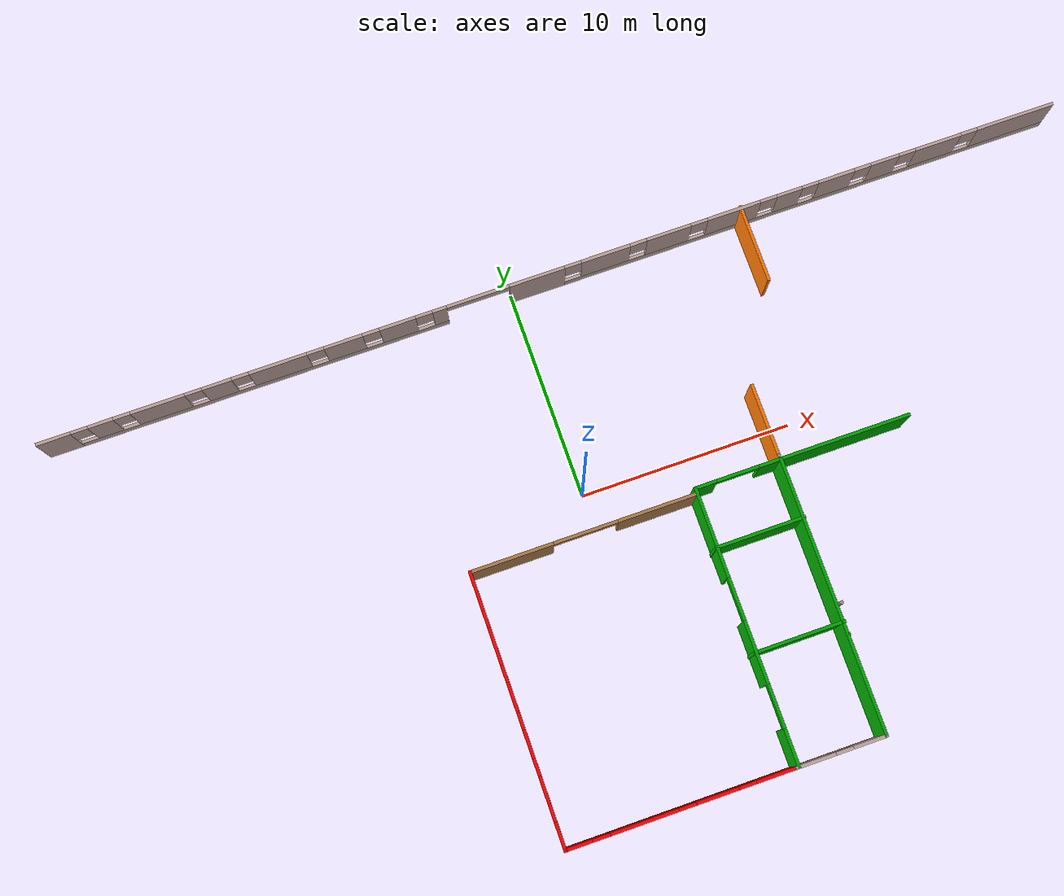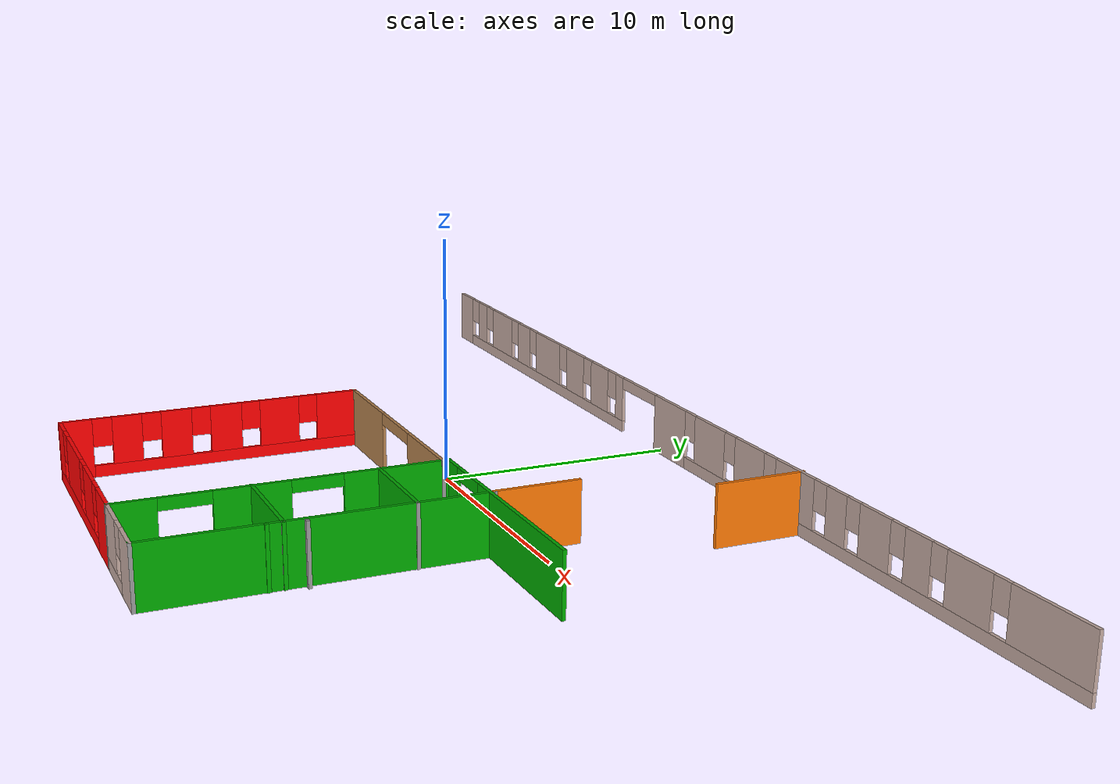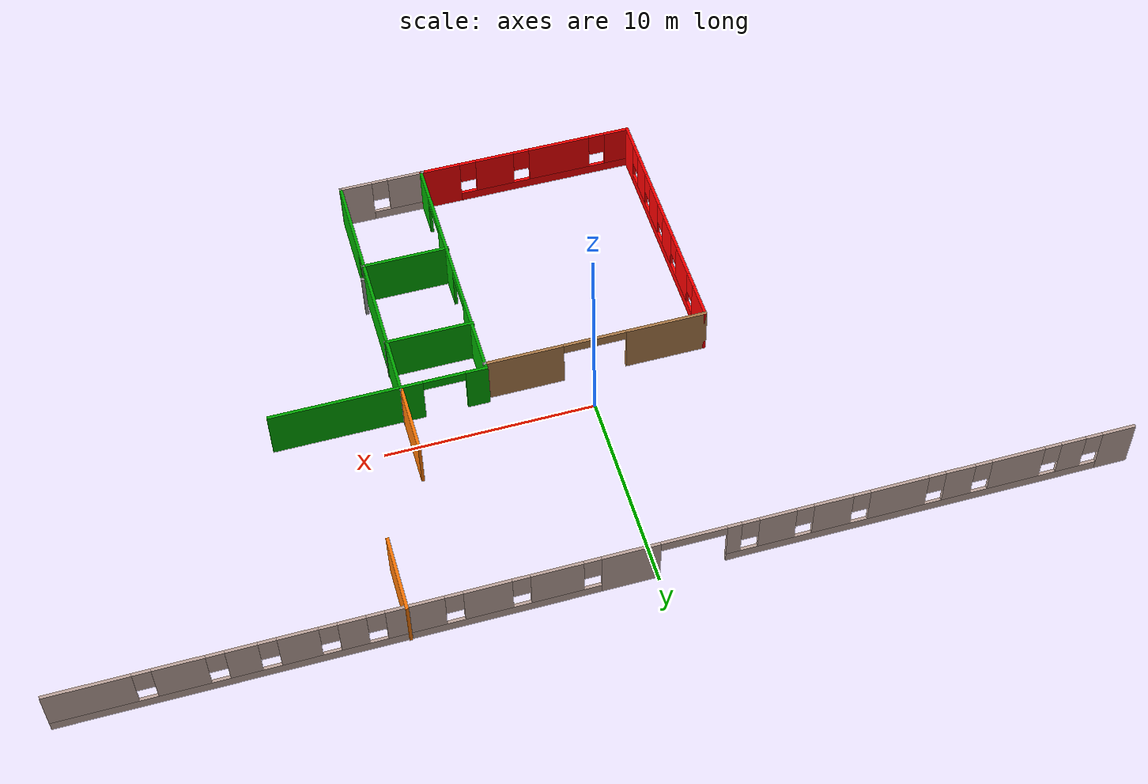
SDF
<sdf version="1.6">
 <model name="FloorPlan">
  <pose>-3.5402 -2.3631 0 0 -0 0</pose>
  <link name="Wall_0">
   <pose>5.59242 12.1499 0 0 -0 7e-06</pose>
   <visual name="Wall_0_Visual_0">
    <pose>-23.5744 0 1.25 0 -0 0</pose>
    <geometry><box><size>1.60129 0.15 2.5</size></box></geometry>
    <material>
     <script><uri>file://media/materials/scripts/gazebo.material</uri><name>Gazebo/Grey</name></script>
     <ambient>0.760784 0.662745 0.627451 1</ambient>
    </material>
    <meta><layer>0</layer></meta>
   </visual>
   <collision name="Wall_0_Collision_0">
    <geometry><box><size>1.60129 0.15 2.5</size></box></geometry>
    <pose>-23.5744 0 1.25 0 -0 0</pose>
   </collision>
   <visual name="Wall_0_Visual_1">
    <pose>-0.824166 0 1.25 0 -0 0</pose>
    <geometry><box><size>2.64767 0.15 2.5</size></box></geometry>
    <material>
     <script><uri>file://media/materials/scripts/gazebo.material</uri><name>Gazebo/Grey</name></script>
     <ambient>0.760784 0.662745 0.627451 1</ambient>
    </material>
    <meta><layer>0</layer></meta>
   </visual>
   <collision name="Wall_0_Collision_1">
    <geometry><box><size>2.64767 0.15 2.5</size></box></geometry>
    <pose>-0.824166 0 1.25 0 -0 0</pose>
   </collision>
   <visual name="Wall_0_Visual_2">
    <pose>-13.9609 0 0.25 0 -0 0</pose>
    <geometry><box><size>17.6257 0.15 0.5</size></box></geometry>
    <material>
     <script><uri>file://media/materials/scripts/gazebo.material</uri><name>Gazebo/Grey</name></script>
     <ambient>0.760784 0.662745 0.627451 1</ambient>
    </material>
    <meta><layer>0</layer></meta>
   </visual>
   <collision name="Wall_0_Collision_2">
    <geometry><box><size>17.6257 0.15 0.5</size></box></geometry>
    <pose>-13.9609 0 0.25 0 -0 0</pose>
   </collision>
   <visual name="Wall_0_Visual_3">
    <pose>12.4373 0 0.25 0 -0 0</pose>
    <geometry><box><size>23.8753 0.15 0.5</size></box></geometry>
    <material>
     <script><uri>file://media/materials/scripts/gazebo.material</uri><name>Gazebo/Grey</name></script>
     <ambient>0.760784 0.662745 0.627451 1</ambient>
    </material>
    <meta><layer>0</layer></meta>
   </visual>
   <collision name="Wall_0_Collision_3">
    <geometry><box><size>23.8753 0.15 0.5</size></box></geometry>
    <pose>12.4373 0 0.25 0 -0 0</pose>
   </collision>
   <visual name="Wall_0_Visual_4">
    <pose>-21.3839 0 1.5 0 -0 0</pose>
    <geometry><box><size>1.17957 0.15 2</size></box></geometry>
    <material>
     <script><uri>file://media/materials/scripts/gazebo.material</uri><name>Gazebo/Grey</name></script>
     <ambient>0.760784 0.662745 0.627451 1</ambient>
    </material>
    <meta><layer>0</layer></meta>
   </visual>
   <collision name="Wall_0_Collision_4">
    <geometry><box><size>1.17957 0.15 2</size></box></geometry>
    <pose>-21.3839 0 1.5 0 -0 0</pose>
   </collision>
   <visual name="Wall_0_Visual_5">
    <pose>-18.7356 0 1.5 0 -0 0</pose>
    <geometry><box><size>2.51713 0.15 2</size></box></geometry>
    <material>
     <script><uri>file://media/materials/scripts/gazebo.material</uri><name>Gazebo/Grey</name></script>
     <ambient>0.760784 0.662745 0.627451 1</ambient>
    </material>
    <meta><layer>0</layer></meta>
   </visual>
   <collision name="Wall_0_Collision_5">
    <geometry><box><size>2.51713 0.15 2</size></box></geometry>
    <pose>-18.7356 0 1.5 0 -0 0</pose>
   </collision>
   <visual name="Wall_0_Visual_6">
    <pose>-15.9802 0 1.5 0 -0 0</pose>
    <geometry><box><size>1.39358 0.15 2</size></box></geometry>
    <material>
     <script><uri>file://media/materials/scripts/gazebo.material</uri><name>Gazebo/Grey</name></script>
     <ambient>0.760784 0.662745 0.627451 1</ambient>
    </material>
    <meta><layer>0</layer></meta>
   </visual>
   <collision name="Wall_0_Collision_6">
    <geometry><box><size>1.39358 0.15 2</size></box></geometry>
    <pose>-15.9802 0 1.5 0 -0 0</pose>
   </collision>
   <visual name="Wall_0_Visual_7">
    <pose>-13.1179 0 1.5 0 -0 0</pose>
    <geometry><box><size>2.73113 0.15 2</size></box></geometry>
    <material>
     <script><uri>file://media/materials/scripts/gazebo.material</uri><name>Gazebo/Grey</name></script>
     <ambient>0.760784 0.662745 0.627451 1</ambient>
    </material>
    <meta><layer>0</layer></meta>
   </visual>
   <collision name="Wall_0_Collision_7">
    <geometry><box><size>2.73113 0.15 2</size></box></geometry>
    <pose>-13.1179 0 1.5 0 -0 0</pose>
   </collision>
   <visual name="Wall_0_Visual_8">
    <pose>-10.0415 0 1.5 0 -0 0</pose>
    <geometry><box><size>1.8216 0.15 2</size></box></geometry>
    <material>
     <script><uri>file://media/materials/scripts/gazebo.material</uri><name>Gazebo/Grey</name></script>
     <ambient>0.760784 0.662745 0.627451 1</ambient>
    </material>
    <meta><layer>0</layer></meta>
   </visual>
   <collision name="Wall_0_Collision_8">
    <geometry><box><size>1.8216 0.15 2</size></box></geometry>
    <pose>-10.0415 0 1.5 0 -0 0</pose>
   </collision>
   <visual name="Wall_0_Visual_9">
    <pose>-7.4734 0 1.5 0 -0 0</pose>
    <geometry><box><size>1.7146 0.15 2</size></box></geometry>
    <material>
     <script><uri>file://media/materials/scripts/gazebo.material</uri><name>Gazebo/Grey</name></script>
     <ambient>0.760784 0.662745 0.627451 1</ambient>
    </material>
    <meta><layer>0</layer></meta>
   </visual>
   <collision name="Wall_0_Collision_9">
    <geometry><box><size>1.7146 0.15 2</size></box></geometry>
    <pose>-7.4734 0 1.5 0 -0 0</pose>
   </collision>
   <visual name="Wall_0_Visual_10">
    <pose>-5.48205 0 1.5 0 -0 0</pose>
    <geometry><box><size>0.668097 0.15 2</size></box></geometry>
    <material>
     <script><uri>file://media/materials/scripts/gazebo.material</uri><name>Gazebo/Grey</name></script>
     <ambient>0.760784 0.662745 0.627451 1</ambient>
    </material>
    <meta><layer>0</layer></meta>
   </visual>
   <collision name="Wall_0_Collision_10">
    <geometry><box><size>0.668097 0.15 2</size></box></geometry>
    <pose>-5.48205 0 1.5 0 -0 0</pose>
   </collision>
   <visual name="Wall_0_Visual_11">
    <pose>-5.48205 0 1.5 0 -0 0</pose>
    <geometry><box><size>0.668097 0.15 2</size></box></geometry>
    <material>
     <script><uri>file://media/materials/scripts/gazebo.material</uri><name>Gazebo/Grey</name></script>
     <ambient>0.760784 0.662745 0.627451 1</ambient>
    </material>
    <meta><layer>0</layer></meta>
   </visual>
   <collision name="Wall_0_Collision_11">
    <geometry><box><size>0.668097 0.15 2</size></box></geometry>
    <pose>-5.48205 0 1.5 0 -0 0</pose>
   </collision>
   <visual name="Wall_0_Visual_12">
    <pose>2.47798 0 1.5 0 -0 0</pose>
    <geometry><box><size>2.35662 0.15 2</size></box></geometry>
    <material>
     <script><uri>file://media/materials/scripts/gazebo.material</uri><name>Gazebo/Grey</name></script>
     <ambient>0.760784 0.662745 0.627451 1</ambient>
    </material>
    <meta><layer>0</layer></meta>
   </visual>
   <collision name="Wall_0_Collision_12">
    <geometry><box><size>2.35662 0.15 2</size></box></geometry>
    <pose>2.47798 0 1.5 0 -0 0</pose>
   </collision>
   <visual name="Wall_0_Visual_13">
    <pose>5.5276 0 1.5 0 -0 0</pose>
    <geometry><box><size>2.14261 0.15 2</size></box></geometry>
    <material>
     <script><uri>file://media/materials/scripts/gazebo.material</uri><name>Gazebo/Grey</name></script>
     <ambient>0.760784 0.662745 0.627451 1</ambient>
    </material>
    <meta><layer>0</layer></meta>
   </visual>
   <collision name="Wall_0_Collision_13">
    <geometry><box><size>2.14261 0.15 2</size></box></geometry>
    <pose>5.5276 0 1.5 0 -0 0</pose>
   </collision>
   <visual name="Wall_0_Visual_14">
    <pose>8.68422 0 1.5 0 -0 0</pose>
    <geometry><box><size>2.57063 0.15 2</size></box></geometry>
    <material>
     <script><uri>file://media/materials/scripts/gazebo.material</uri><name>Gazebo/Grey</name></script>
     <ambient>0.760784 0.662745 0.627451 1</ambient>
    </material>
    <meta><layer>0</layer></meta>
   </visual>
   <collision name="Wall_0_Collision_14">
    <geometry><box><size>2.57063 0.15 2</size></box></geometry>
    <pose>8.68422 0 1.5 0 -0 0</pose>
   </collision>
   <visual name="Wall_0_Visual_15">
    <pose>11.3861 0 1.5 0 -0 0</pose>
    <geometry><box><size>1.23308 0.15 2</size></box></geometry>
    <material>
     <script><uri>file://media/materials/scripts/gazebo.material</uri><name>Gazebo/Grey</name></script>
     <ambient>0.760784 0.662745 0.627451 1</ambient>
    </material>
    <meta><layer>0</layer></meta>
   </visual>
   <collision name="Wall_0_Collision_15">
    <geometry><box><size>1.23308 0.15 2</size></box></geometry>
    <pose>11.3861 0 1.5 0 -0 0</pose>
   </collision>
   <visual name="Wall_0_Visual_16">
    <pose>13.6867 0 1.5 0 -0 0</pose>
    <geometry><box><size>1.7681 0.15 2</size></box></geometry>
    <material>
     <script><uri>file://media/materials/scripts/gazebo.material</uri><name>Gazebo/Grey</name></script>
     <ambient>0.760784 0.662745 0.627451 1</ambient>
    </material>
    <meta><layer>0</layer></meta>
   </visual>
   <collision name="Wall_0_Collision_16">
    <geometry><box><size>1.7681 0.15 2</size></box></geometry>
    <pose>13.6867 0 1.5 0 -0 0</pose>
   </collision>
   <visual name="Wall_0_Visual_17">
    <pose>16.0675 0 1.5 0 -0 0</pose>
    <geometry><box><size>1.39358 0.15 2</size></box></geometry>
    <material>
     <script><uri>file://media/materials/scripts/gazebo.material</uri><name>Gazebo/Grey</name></script>
     <ambient>0.760784 0.662745 0.627451 1</ambient>
    </material>
    <meta><layer>0</layer></meta>
   </visual>
   <collision name="Wall_0_Collision_17">
    <geometry><box><size>1.39358 0.15 2</size></box></geometry>
    <pose>16.0675 0 1.5 0 -0 0</pose>
   </collision>
   <visual name="Wall_0_Visual_18">
    <pose>18.6891 0 1.5 0 -0 0</pose>
    <geometry><box><size>2.24962 0.15 2</size></box></geometry>
    <material>
     <script><uri>file://media/materials/scripts/gazebo.material</uri><name>Gazebo/Grey</name></script>
     <ambient>0.760784 0.662745 0.627451 1</ambient>
    </material>
    <meta><layer>0</layer></meta>
   </visual>
   <collision name="Wall_0_Collision_18">
    <geometry><box><size>2.24962 0.15 2</size></box></geometry>
    <pose>18.6891 0 1.5 0 -0 0</pose>
   </collision>
   <visual name="Wall_0_Visual_19">
    <pose>22.4945 0 1.5 0 -0 0</pose>
    <geometry><box><size>3.7611 0.15 2</size></box></geometry>
    <material>
     <script><uri>file://media/materials/scripts/gazebo.material</uri><name>Gazebo/Grey</name></script>
     <ambient>0.760784 0.662745 0.627451 1</ambient>
    </material>
    <meta><layer>0</layer></meta>
   </visual>
   <collision name="Wall_0_Collision_19">
    <geometry><box><size>3.7611 0.15 2</size></box></geometry>
    <pose>22.4945 0 1.5 0 -0 0</pose>
   </collision>
   <visual name="Wall_0_Visual_20">
    <pose>-22.3737 0 1.9 0 -0 0</pose>
    <geometry><box><size>0.8 0.15 1.2</size></box></geometry>
    <material>
     <script><uri>file://media/materials/scripts/gazebo.material</uri><name>Gazebo/Grey</name></script>
     <ambient>0.760784 0.662745 0.627451 1</ambient>
    </material>
    <meta><layer>0</layer></meta>
   </visual>
   <collision name="Wall_0_Collision_20">
    <geometry><box><size>0.8 0.15 1.2</size></box></geometry>
    <pose>-22.3737 0 1.9 0 -0 0</pose>
   </collision>
   <visual name="Wall_0_Visual_21">
    <pose>0.89967 0 1.9 0 -0 0</pose>
    <geometry><box><size>0.8 0.15 1.2</size></box></geometry>
    <material>
     <script><uri>file://media/materials/scripts/gazebo.material</uri><name>Gazebo/Grey</name></script>
     <ambient>0.760784 0.662745 0.627451 1</ambient>
    </material>
    <meta><layer>0</layer></meta>
   </visual>
   <collision name="Wall_0_Collision_21">
    <geometry><box><size>0.8 0.15 1.2</size></box></geometry>
    <pose>0.89967 0 1.9 0 -0 0</pose>
   </collision>
   <visual name="Wall_0_Visual_22">
    <pose>-20.3941 0 1.9 0 -0 0</pose>
    <geometry><box><size>0.8 0.15 1.2</size></box></geometry>
    <material>
     <script><uri>file://media/materials/scripts/gazebo.material</uri><name>Gazebo/Grey</name></script>
     <ambient>0.760784 0.662745 0.627451 1</ambient>
    </material>
    <meta><layer>0</layer></meta>
   </visual>
   <collision name="Wall_0_Collision_22">
    <geometry><box><size>0.8 0.15 1.2</size></box></geometry>
    <pose>-20.3941 0 1.9 0 -0 0</pose>
   </collision>
   <visual name="Wall_0_Visual_23">
    <pose>-17.077 0 1.9 0 -0 0</pose>
    <geometry><box><size>0.8 0.15 1.2</size></box></geometry>
    <material>
     <script><uri>file://media/materials/scripts/gazebo.material</uri><name>Gazebo/Grey</name></script>
     <ambient>0.760784 0.662745 0.627451 1</ambient>
    </material>
    <meta><layer>0</layer></meta>
   </visual>
   <collision name="Wall_0_Collision_23">
    <geometry><box><size>0.8 0.15 1.2</size></box></geometry>
    <pose>-17.077 0 1.9 0 -0 0</pose>
   </collision>
   <visual name="Wall_0_Visual_24">
    <pose>-14.8834 0 1.9 0 -0 0</pose>
    <geometry><box><size>0.8 0.15 1.2</size></box></geometry>
    <material>
     <script><uri>file://media/materials/scripts/gazebo.material</uri><name>Gazebo/Grey</name></script>
     <ambient>0.760784 0.662745 0.627451 1</ambient>
    </material>
    <meta><layer>0</layer></meta>
   </visual>
   <collision name="Wall_0_Collision_24">
    <geometry><box><size>0.8 0.15 1.2</size></box></geometry>
    <pose>-14.8834 0 1.9 0 -0 0</pose>
   </collision>
   <visual name="Wall_0_Visual_25">
    <pose>-11.3523 0 1.9 0 -0 0</pose>
    <geometry><box><size>0.8 0.15 1.2</size></box></geometry>
    <material>
     <script><uri>file://media/materials/scripts/gazebo.material</uri><name>Gazebo/Grey</name></script>
     <ambient>0.760784 0.662745 0.627451 1</ambient>
    </material>
    <meta><layer>0</layer></meta>
   </visual>
   <collision name="Wall_0_Collision_25">
    <geometry><box><size>0.8 0.15 1.2</size></box></geometry>
    <pose>-11.3523 0 1.9 0 -0 0</pose>
   </collision>
   <visual name="Wall_0_Visual_26">
    <pose>-8.7307 0 1.9 0 -0 0</pose>
    <geometry><box><size>0.8 0.15 1.2</size></box></geometry>
    <material>
     <script><uri>file://media/materials/scripts/gazebo.material</uri><name>Gazebo/Grey</name></script>
     <ambient>0.760784 0.662745 0.627451 1</ambient>
    </material>
    <meta><layer>0</layer></meta>
   </visual>
   <collision name="Wall_0_Collision_26">
    <geometry><box><size>0.8 0.15 1.2</size></box></geometry>
    <pose>-8.7307 0 1.9 0 -0 0</pose>
   </collision>
   <visual name="Wall_0_Visual_27">
    <pose>-6.2161 0 1.9 0 -0 0</pose>
    <geometry><box><size>0.8 0.15 1.2</size></box></geometry>
    <material>
     <script><uri>file://media/materials/scripts/gazebo.material</uri><name>Gazebo/Grey</name></script>
     <ambient>0.760784 0.662745 0.627451 1</ambient>
    </material>
    <meta><layer>0</layer></meta>
   </visual>
   <collision name="Wall_0_Collision_27">
    <geometry><box><size>0.8 0.15 1.2</size></box></geometry>
    <pose>-6.2161 0 1.9 0 -0 0</pose>
   </collision>
   <visual name="Wall_0_Visual_28">
    <pose>4.05629 0 1.9 0 -0 0</pose>
    <geometry><box><size>0.8 0.15 1.2</size></box></geometry>
    <material>
     <script><uri>file://media/materials/scripts/gazebo.material</uri><name>Gazebo/Grey</name></script>
     <ambient>0.760784 0.662745 0.627451 1</ambient>
    </material>
    <meta><layer>0</layer></meta>
   </visual>
   <collision name="Wall_0_Collision_28">
    <geometry><box><size>0.8 0.15 1.2</size></box></geometry>
    <pose>4.05629 0 1.9 0 -0 0</pose>
   </collision>
   <visual name="Wall_0_Visual_29">
    <pose>6.9989 0 1.9 0 -0 0</pose>
    <geometry><box><size>0.8 0.15 1.2</size></box></geometry>
    <material>
     <script><uri>file://media/materials/scripts/gazebo.material</uri><name>Gazebo/Grey</name></script>
     <ambient>0.760784 0.662745 0.627451 1</ambient>
    </material>
    <meta><layer>0</layer></meta>
   </visual>
   <collision name="Wall_0_Collision_29">
    <geometry><box><size>0.8 0.15 1.2</size></box></geometry>
    <pose>6.9989 0 1.9 0 -0 0</pose>
   </collision>
   <visual name="Wall_0_Visual_30">
    <pose>10.3695 0 1.9 0 -0 0</pose>
    <geometry><box><size>0.8 0.15 1.2</size></box></geometry>
    <material>
     <script><uri>file://media/materials/scripts/gazebo.material</uri><name>Gazebo/Grey</name></script>
     <ambient>0.760784 0.662745 0.627451 1</ambient>
    </material>
    <meta><layer>0</layer></meta>
   </visual>
   <collision name="Wall_0_Collision_30">
    <geometry><box><size>0.8 0.15 1.2</size></box></geometry>
    <pose>10.3695 0 1.9 0 -0 0</pose>
   </collision>
   <visual name="Wall_0_Visual_31">
    <pose>12.4026 0 1.9 0 -0 0</pose>
    <geometry><box><size>0.8 0.15 1.2</size></box></geometry>
    <material>
     <script><uri>file://media/materials/scripts/gazebo.material</uri><name>Gazebo/Grey</name></script>
     <ambient>0.760784 0.662745 0.627451 1</ambient>
    </material>
    <meta><layer>0</layer></meta>
   </visual>
   <collision name="Wall_0_Collision_31">
    <geometry><box><size>0.8 0.15 1.2</size></box></geometry>
    <pose>12.4026 0 1.9 0 -0 0</pose>
   </collision>
   <visual name="Wall_0_Visual_32">
    <pose>14.9707 0 1.9 0 -0 0</pose>
    <geometry><box><size>0.8 0.15 1.2</size></box></geometry>
    <material>
     <script><uri>file://media/materials/scripts/gazebo.material</uri><name>Gazebo/Grey</name></script>
     <ambient>0.760784 0.662745 0.627451 1</ambient>
    </material>
    <meta><layer>0</layer></meta>
   </visual>
   <collision name="Wall_0_Collision_32">
    <geometry><box><size>0.8 0.15 1.2</size></box></geometry>
    <pose>14.9707 0 1.9 0 -0 0</pose>
   </collision>
   <visual name="Wall_0_Visual_33">
    <pose>17.1643 0 1.9 0 -0 0</pose>
    <geometry><box><size>0.8 0.15 1.2</size></box></geometry>
    <material>
     <script><uri>file://media/materials/scripts/gazebo.material</uri><name>Gazebo/Grey</name></script>
     <ambient>0.760784 0.662745 0.627451 1</ambient>
    </material>
    <meta><layer>0</layer></meta>
   </visual>
   <collision name="Wall_0_Collision_33">
    <geometry><box><size>0.8 0.15 1.2</size></box></geometry>
    <pose>17.1643 0 1.9 0 -0 0</pose>
   </collision>
   <visual name="Wall_0_Visual_34">
    <pose>20.2139 0 1.9 0 -0 0</pose>
    <geometry><box><size>0.8 0.15 1.2</size></box></geometry>
    <material>
     <script><uri>file://media/materials/scripts/gazebo.material</uri><name>Gazebo/Grey</name></script>
     <ambient>0.760784 0.662745 0.627451 1</ambient>
    </material>
    <meta><layer>0</layer></meta>
   </visual>
   <collision name="Wall_0_Collision_34">
    <geometry><box><size>0.8 0.15 1.2</size></box></geometry>
    <pose>20.2139 0 1.9 0 -0 0</pose>
   </collision>
   <visual name="Wall_0_Visual_35">
    <pose>-3.648 0 2.25 0 -0 0</pose>
    <geometry><box><size>3 0.15 0.5</size></box></geometry>
    <material>
     <script><uri>file://media/materials/scripts/gazebo.material</uri><name>Gazebo/Grey</name></script>
     <ambient>0.760784 0.662745 0.627451 1</ambient>
    </material>
    <meta><layer>0</layer></meta>
   </visual>
   <collision name="Wall_0_Collision_35">
    <geometry><box><size>3 0.15 0.5</size></box></geometry>
    <pose>-3.648 0 2.25 0 -0 0</pose>
   </collision>
   <visual name="Wall_0_Visual_36">
    <pose>-3.648 0 2.25 0 -0 0</pose>
    <geometry><box><size>3 0.15 0.5</size></box></geometry>
    <material>
     <script><uri>file://media/materials/scripts/gazebo.material</uri><name>Gazebo/Grey</name></script>
     <ambient>0.760784 0.662745 0.627451 1</ambient>
    </material>
    <meta><layer>0</layer></meta>
   </visual>
   <collision name="Wall_0_Collision_36">
    <geometry><box><size>3 0.15 0.5</size></box></geometry>
    <pose>-3.648 0 2.25 0 -0 0</pose>
   </collision>
  </link>
  <link name="Wall_101">
   <collision name="Wall_101_Collision">
    <geometry><box><size>13 0.15 2.5</size></box></geometry>
    <pose>0 0 1.25 0 -0 0</pose>
   </collision>
   <visual name="Wall_101_Visual">
    <pose>0 0 1.25 0 -0 0</pose>
    <geometry><box><size>13 0.15 2.5</size></box></geometry>
    <material>
     <script><uri>file://media/materials/scripts/gazebo.material</uri><name>Gazebo/Grey</name></script>
     <ambient>0 0.666667 0 1</ambient>
    </material>
    <meta><layer>0</layer></meta>
   </visual>
   <pose>12.2171 -5.77826 0 0 -0 -1.5708</pose>
  </link>
  <link name="Wall_102">
   <collision name="Wall_102_Collision">
    <geometry><box><size>0.15 0.15 2.5</size></box></geometry>
    <pose>0 0 1.25 0 -0 0</pose>
   </collision>
   <visual name="Wall_102_Visual">
    <pose>0 0 1.25 0 -0 0</pose>
    <geometry><box><size>0.15 0.15 2.5</size></box></geometry>
    <material>
     <script><uri>file://media/materials/scripts/gazebo.material</uri><name>Gazebo/Grey</name></script>
     <ambient>1 1 1 1</ambient>
    </material>
    <meta><layer>0</layer></meta>
   </visual>
   <pose>12.2171 -12.2033 0 0 -0 0</pose>
  </link>
  <link name="Wall_103">
   <pose>10.1671 -12.2033 0 0 -0 3.14159</pose>
   <visual name="Wall_103_Visual_0">
    <pose>-1.32445 0 1.25 0 -0 0</pose>
    <geometry><box><size>1.60109 0.15 2.5</size></box></geometry>
    <material>
     <script><uri>file://media/materials/scripts/gazebo.material</uri><name>Gazebo/Grey</name></script>
     <ambient>0.760784 0.662745 0.627451 1</ambient>
    </material>
    <meta><layer>0</layer></meta>
   </visual>
   <collision name="Wall_103_Collision_0">
    <geometry><box><size>1.60109 0.15 2.5</size></box></geometry>
    <pose>-1.32445 0 1.25 0 -0 0</pose>
   </collision>
   <visual name="Wall_103_Visual_1">
    <pose>0.800545 0 0.25 0 -0 0</pose>
    <geometry><box><size>2.64891 0.15 0.5</size></box></geometry>
    <material>
     <script><uri>file://media/materials/scripts/gazebo.material</uri><name>Gazebo/Grey</name></script>
     <ambient>0.760784 0.662745 0.627451 1</ambient>
    </material>
    <meta><layer>0</layer></meta>
   </visual>
   <collision name="Wall_103_Collision_1">
    <geometry><box><size>2.64891 0.15 0.5</size></box></geometry>
    <pose>0.800545 0 0.25 0 -0 0</pose>
   </collision>
   <visual name="Wall_103_Visual_2">
    <pose>1.20054 0 1.5 0 -0 0</pose>
    <geometry><box><size>1.84891 0.15 2</size></box></geometry>
    <material>
     <script><uri>file://media/materials/scripts/gazebo.material</uri><name>Gazebo/Grey</name></script>
     <ambient>0.760784 0.662745 0.627451 1</ambient>
    </material>
    <meta><layer>0</layer></meta>
   </visual>
   <collision name="Wall_103_Collision_2">
    <geometry><box><size>1.84891 0.15 2</size></box></geometry>
    <pose>1.20054 0 1.5 0 -0 0</pose>
   </collision>
   <visual name="Wall_103_Visual_3">
    <pose>-0.12391 0 1.9 0 -0 0</pose>
    <geometry><box><size>0.8 0.15 1.2</size></box></geometry>
    <material>
     <script><uri>file://media/materials/scripts/gazebo.material</uri><name>Gazebo/Grey</name></script>
     <ambient>0.760784 0.662745 0.627451 1</ambient>
    </material>
    <meta><layer>0</layer></meta>
   </visual>
   <collision name="Wall_103_Collision_3">
    <geometry><box><size>0.8 0.15 1.2</size></box></geometry>
    <pose>-0.12391 0 1.9 0 -0 0</pose>
   </collision>
  </link>
  <link name="Wall_104">
   <collision name="Wall_104_Collision">
    <geometry><box><size>0.16 0.15 2.5</size></box></geometry>
    <pose>0 0 1.25 0 -0 0</pose>
   </collision>
   <visual name="Wall_104_Visual">
    <pose>0 0 1.25 0 -0 0</pose>
    <geometry><box><size>0.16 0.15 2.5</size></box></geometry>
    <material>
     <script><uri>file://media/materials/scripts/gazebo.material</uri><name>Gazebo/Grey</name></script>
     <ambient>1 1 1 1</ambient>
    </material>
    <meta><layer>0</layer></meta>
   </visual>
   <pose>8.12208 -12.2033 0 0 -0 0</pose>
  </link>
  <link name="Wall_106">
   <pose>2.89263 0.399775 0 0 -0 0</pose>
   <visual name="Wall_106_Visual_0">
    <pose>-3.40324 0 1.25 0 -0 0</pose>
    <geometry><box><size>3.94351 0.15 2.5</size></box></geometry>
    <material>
     <script><uri>file://media/materials/scripts/gazebo.material</uri><name>Gazebo/Wood</name></script>
     <ambient>1 1 1 1</ambient>
    </material>
    <meta><layer>0</layer></meta>
   </visual>
   <collision name="Wall_106_Collision_0">
    <geometry><box><size>3.94351 0.15 2.5</size></box></geometry>
    <pose>-3.40324 0 1.25 0 -0 0</pose>
   </collision>
   <visual name="Wall_106_Visual_1">
    <pose>3.47176 0 1.25 0 -0 0</pose>
    <geometry><box><size>3.80649 0.15 2.5</size></box></geometry>
    <material>
     <script><uri>file://media/materials/scripts/gazebo.material</uri><name>Gazebo/Wood</name></script>
     <ambient>1 1 1 1</ambient>
    </material>
    <meta><layer>0</layer></meta>
   </visual>
   <collision name="Wall_106_Collision_1">
    <geometry><box><size>3.80649 0.15 2.5</size></box></geometry>
    <pose>3.47176 0 1.25 0 -0 0</pose>
   </collision>
   <visual name="Wall_106_Visual_2">
    <pose>0.068513 0 2.25 0 -0 0</pose>
    <geometry><box><size>3 0.15 0.5</size></box></geometry>
    <material>
     <script><uri>file://media/materials/scripts/gazebo.material</uri><name>Gazebo/Wood</name></script>
     <ambient>1 1 1 1</ambient>
    </material>
    <meta><layer>0</layer></meta>
   </visual>
   <collision name="Wall_106_Collision_2">
    <geometry><box><size>3 0.15 0.5</size></box></geometry>
    <pose>0.068513 0 2.25 0 -0 0</pose>
   </collision>
  </link>
  <link name="Wall_107">
   <collision name="Wall_107_Collision">
    <geometry><box><size>0.16 0.15 2.5</size></box></geometry>
    <pose>0 0 1.25 0 -0 0</pose>
   </collision>
   <visual name="Wall_107_Visual">
    <pose>0 0 1.25 0 -0 0</pose>
    <geometry><box><size>0.16 0.15 2.5</size></box></geometry>
    <material>
     <script><uri>file://media/materials/scripts/gazebo.material</uri><name>Gazebo/Grey</name></script>
     <ambient>1 1 1 1</ambient>
    </material>
    <meta><layer>0</layer></meta>
   </visual>
   <pose>8.19763 0.399775 0 0 -0 0</pose>
  </link>
  <link name="Wall_110">
   <collision name="Wall_110_Collision">
    <geometry><box><size>0.15 0.15 2.5</size></box></geometry>
    <pose>0 0 1.25 0 -0 0</pose>
   </collision>
   <visual name="Wall_110_Visual">
    <pose>0 0 1.25 0 -0 0</pose>
    <geometry><box><size>0.15 0.15 2.5</size></box></geometry>
    <material>
     <script><uri>file://media/materials/scripts/gazebo.material</uri><name>Gazebo/Grey</name></script>
     <ambient>0 0.666667 0 1</ambient>
    </material>
    <meta><layer>0</layer></meta>
   </visual>
   <pose>12.2509 -7.59265 0 0 -0 0</pose>
  </link>
  <link name="Wall_112">
   <collision name="Wall_112_Collision">
    <geometry><box><size>4.25 0.15 2.5</size></box></geometry>
    <pose>0 0 1.25 0 -0 0</pose>
   </collision>
   <visual name="Wall_112_Visual">
    <pose>0 0 1.25 0 -0 0</pose>
    <geometry><box><size>4.25 0.15 2.5</size></box></geometry>
    <material>
     <script><uri>file://media/materials/scripts/gazebo.material</uri><name>Gazebo/Grey</name></script>
     <ambient>0 0.666667 0 1</ambient>
    </material>
    <meta><layer>0</layer></meta>
   </visual>
   <pose>10.2009 -2.13539 0 0 -0 0</pose>
  </link>
  <link name="Wall_113">
   <collision name="Wall_113_Collision">
    <geometry><box><size>0.16 0.15 2.5</size></box></geometry>
    <pose>0 0 1.25 0 -0 0</pose>
   </collision>
   <visual name="Wall_113_Visual">
    <pose>0 0 1.25 0 -0 0</pose>
    <geometry><box><size>0.16 0.15 2.5</size></box></geometry>
    <material>
     <script><uri>file://media/materials/scripts/gazebo.material</uri><name>Gazebo/Grey</name></script>
     <ambient>1 1 1 1</ambient>
    </material>
    <meta><layer>0</layer></meta>
   </visual>
   <pose>12.2559 -2.13539 0 0 -0 0</pose>
  </link>
  <link name="Wall_115">
   <collision name="Wall_115_Collision">
    <geometry><box><size>4.25 0.15 2.5</size></box></geometry>
    <pose>0 0 1.25 0 -0 0</pose>
   </collision>
   <visual name="Wall_115_Visual">
    <pose>0 0 1.25 0 -0 0</pose>
    <geometry><box><size>4.25 0.15 2.5</size></box></geometry>
    <material>
     <script><uri>file://media/materials/scripts/gazebo.material</uri><name>Gazebo/Grey</name></script>
     <ambient>0 0.666667 0 1</ambient>
    </material>
    <meta><layer>0</layer></meta>
   </visual>
   <pose>10.2009 -7.00412 0 0 -0 0</pose>
  </link>
  <link name="Wall_116">
   <collision name="Wall_116_Collision">
    <geometry><box><size>0.16 0.15 2.5</size></box></geometry>
    <pose>0 0 1.25 0 -0 0</pose>
   </collision>
   <visual name="Wall_116_Visual">
    <pose>0 0 1.25 0 -0 0</pose>
    <geometry><box><size>0.16 0.15 2.5</size></box></geometry>
    <material>
     <script><uri>file://media/materials/scripts/gazebo.material</uri><name>Gazebo/Grey</name></script>
     <ambient>1 1 1 1</ambient>
    </material>
    <meta><layer>0</layer></meta>
   </visual>
   <pose>12.2559 -7.00412 0 0 -0 0</pose>
  </link>
  <link name="Wall_117">
   <collision name="Wall_117_Collision">
    <geometry><box><size>0.16 0.15 2.5</size></box></geometry>
    <pose>0 0 1.25 0 -0 0</pose>
   </collision>
   <visual name="Wall_117_Visual">
    <pose>0 0 1.25 0 -0 0</pose>
    <geometry><box><size>0.16 0.15 2.5</size></box></geometry>
    <material>
     <script><uri>file://media/materials/scripts/gazebo.material</uri><name>Gazebo/Grey</name></script>
     <ambient>0 0.666667 0 1</ambient>
    </material>
    <meta><layer>0</layer></meta>
   </visual>
   <pose>12.2659 -7.00412 0 0 -0 0</pose>
  </link>
  <link name="Wall_157">
   <collision name="Wall_157_Collision">
    <geometry><box><size>3.75 0.15 2.5</size></box></geometry>
    <pose>0 0 1.25 0 -0 0</pose>
   </collision>
   <visual name="Wall_157_Visual">
    <pose>0 0 1.25 0 -0 0</pose>
    <geometry><box><size>3.75 0.15 2.5</size></box></geometry>
    <material>
     <script><uri>file://media/materials/scripts/gazebo.material</uri><name>Gazebo/Grey</name></script>
     <ambient>0.996078 0.47451 0.0196078 1</ambient>
    </material>
    <meta><layer>0</layer></meta>
   </visual>
   <pose>14.6247 10.4033 0 0 -0 -1.5708</pose>
  </link>
  <link name="Wall_169">
   <collision name="Wall_169_Collision">
    <geometry><box><size>3.5 0.15 2.5</size></box></geometry>
    <pose>0 0 1.25 0 -0 0</pose>
   </collision>
   <visual name="Wall_169_Visual">
    <pose>0 0 1.25 0 -0 0</pose>
    <geometry><box><size>3.5 0.15 2.5</size></box></geometry>
    <material>
     <script><uri>file://media/materials/scripts/gazebo.material</uri><name>Gazebo/Grey</name></script>
     <ambient>0.996078 0.47451 0.0196078 1</ambient>
    </material>
    <meta><layer>0</layer></meta>
   </visual>
   <pose>12.1852 2.5029 0 0 -0 -1.5708</pose>
  </link>
  <link name="Wall_170">
   <collision name="Wall_170_Collision">
    <geometry><box><size>0.16 0.15 2.5</size></box></geometry>
    <pose>0 0 1.25 0 -0 0</pose>
   </collision>
   <visual name="Wall_170_Visual">
    <pose>0 0 1.25 0 -0 0</pose>
    <geometry><box><size>0.16 0.15 2.5</size></box></geometry>
    <material>
     <script><uri>file://media/materials/scripts/gazebo.material</uri><name>Gazebo/Grey</name></script>
     <ambient>1 1 1 1</ambient>
    </material>
    <meta><layer>0</layer></meta>
   </visual>
   <pose>12.1902 0.827902 0 0 -0 0</pose>
  </link>
  <link name="Wall_195">
   <collision name="Wall_195_Collision">
    <geometry><box><size>0.16 0.15 2.5</size></box></geometry>
    <pose>0 0 1.25 0 -0 0</pose>
   </collision>
   <visual name="Wall_195_Visual">
    <pose>0 0 1.25 0 -0 0</pose>
    <geometry><box><size>0.16 0.15 2.5</size></box></geometry>
    <material>
     <script><uri>file://media/materials/scripts/gazebo.material</uri><name>Gazebo/Grey</name></script>
     <ambient>1 1 1 1</ambient>
    </material>
    <meta><layer>0</layer></meta>
   </visual>
   <pose>12.4476 -6.20023 0 0 -0 0</pose>
  </link>
  <link name="Wall_4">
   <pose>13.2426 0.649775 0 0 -0 3.14159</pose>
   <visual name="Wall_4_Visual_0">
    <pose>-1.53317 0 1.25 0 -0 0</pose>
    <geometry><box><size>7.18365 0.15 2.5</size></box></geometry>
    <material>
     <script><uri>file://media/materials/scripts/gazebo.material</uri><name>Gazebo/Grey</name></script>
     <ambient>0 0.666667 0 1</ambient>
    </material>
    <meta><layer>0</layer></meta>
   </visual>
   <collision name="Wall_4_Collision_0">
    <geometry><box><size>7.18365 0.15 2.5</size></box></geometry>
    <pose>-1.53317 0 1.25 0 -0 0</pose>
   </collision>
   <visual name="Wall_4_Visual_1">
    <pose>4.59183 0 1.25 0 -0 0</pose>
    <geometry><box><size>1.06635 0.15 2.5</size></box></geometry>
    <material>
     <script><uri>file://media/materials/scripts/gazebo.material</uri><name>Gazebo/Grey</name></script>
     <ambient>0 0.666667 0 1</ambient>
    </material>
    <meta><layer>0</layer></meta>
   </visual>
   <collision name="Wall_4_Collision_1">
    <geometry><box><size>1.06635 0.15 2.5</size></box></geometry>
    <pose>4.59183 0 1.25 0 -0 0</pose>
   </collision>
   <visual name="Wall_4_Visual_2">
    <pose>3.05865 0 2.25 0 -0 0</pose>
    <geometry><box><size>2 0.15 0.5</size></box></geometry>
    <material>
     <script><uri>file://media/materials/scripts/gazebo.material</uri><name>Gazebo/Grey</name></script>
     <ambient>0 0.666667 0 1</ambient>
    </material>
    <meta><layer>0</layer></meta>
   </visual>
   <collision name="Wall_4_Collision_2">
    <geometry><box><size>2 0.15 0.5</size></box></geometry>
    <pose>3.05865 0 2.25 0 -0 0</pose>
   </collision>
  </link>
  <link name="Wall_5">
   <pose>8.19263 -5.77523 0 0 -0 -1.5708</pose>
   <visual name="Wall_5_Visual_0">
    <pose>-4.36611 0 1.25 0 -0 0</pose>
    <geometry><box><size>4.26778 0.15 2.5</size></box></geometry>
    <material>
     <script><uri>file://media/materials/scripts/gazebo.material</uri><name>Gazebo/Grey</name></script>
     <ambient>0 0.666667 0 1</ambient>
    </material>
    <meta><layer>0</layer></meta>
   </visual>
   <collision name="Wall_5_Collision_0">
    <geometry><box><size>4.26778 0.15 2.5</size></box></geometry>
    <pose>-4.36611 0 1.25 0 -0 0</pose>
   </collision>
   <visual name="Wall_5_Visual_1">
    <pose>1.2289 0 1.25 0 -0 0</pose>
    <geometry><box><size>2.92223 0.15 2.5</size></box></geometry>
    <material>
     <script><uri>file://media/materials/scripts/gazebo.material</uri><name>Gazebo/Grey</name></script>
     <ambient>0 0.666667 0 1</ambient>
    </material>
    <meta><layer>0</layer></meta>
   </visual>
   <collision name="Wall_5_Collision_1">
    <geometry><box><size>2.92223 0.15 2.5</size></box></geometry>
    <pose>1.2289 0 1.25 0 -0 0</pose>
   </collision>
   <visual name="Wall_5_Visual_2">
    <pose>5.595 0 1.25 0 -0 0</pose>
    <geometry><box><size>1.80999 0.15 2.5</size></box></geometry>
    <material>
     <script><uri>file://media/materials/scripts/gazebo.material</uri><name>Gazebo/Grey</name></script>
     <ambient>0 0.666667 0 1</ambient>
    </material>
    <meta><layer>0</layer></meta>
   </visual>
   <collision name="Wall_5_Collision_2">
    <geometry><box><size>1.80999 0.15 2.5</size></box></geometry>
    <pose>5.595 0 1.25 0 -0 0</pose>
   </collision>
   <visual name="Wall_5_Visual_3">
    <pose>-1.23222 0 2.25 0 -0 0</pose>
    <geometry><box><size>2 0.15 0.5</size></box></geometry>
    <material>
     <script><uri>file://media/materials/scripts/gazebo.material</uri><name>Gazebo/Grey</name></script>
     <ambient>0 0.666667 0 1</ambient>
    </material>
    <meta><layer>0</layer></meta>
   </visual>
   <collision name="Wall_5_Collision_3">
    <geometry><box><size>2 0.15 0.5</size></box></geometry>
    <pose>-1.23222 0 2.25 0 -0 0</pose>
   </collision>
   <visual name="Wall_5_Visual_4">
    <pose>3.69001 0 2.25 0 -0 0</pose>
    <geometry><box><size>2 0.15 0.5</size></box></geometry>
    <material>
     <script><uri>file://media/materials/scripts/gazebo.material</uri><name>Gazebo/Grey</name></script>
     <ambient>0 0.666667 0 1</ambient>
    </material>
    <meta><layer>0</layer></meta>
   </visual>
   <collision name="Wall_5_Collision_4">
    <geometry><box><size>2 0.15 0.5</size></box></geometry>
    <pose>3.69001 0 2.25 0 -0 0</pose>
   </collision>
  </link>
  <link name="Wall_6">
   <pose>2.89263 -12.2002 0 0 -0 3.14159</pose>
   <visual name="Wall_6_Visual_0">
    <pose>-4.36632 0 1.25 0 -0 0</pose>
    <geometry><box><size>2.01735 0.15 2.5</size></box></geometry>
    <material>
     <script><uri>file://media/materials/scripts/gazebo.material</uri><name>Gazebo/Grey</name></script>
     <ambient>1 0 0 1</ambient>
    </material>
    <meta><layer>0</layer></meta>
   </visual>
   <collision name="Wall_6_Collision_0">
    <geometry><box><size>2.01735 0.15 2.5</size></box></geometry>
    <pose>-4.36632 0 1.25 0 -0 0</pose>
   </collision>
   <visual name="Wall_6_Visual_1">
    <pose>1.00868 0 0.25 0 -0 0</pose>
    <geometry><box><size>8.73265 0.15 0.5</size></box></geometry>
    <material>
     <script><uri>file://media/materials/scripts/gazebo.material</uri><name>Gazebo/Grey</name></script>
     <ambient>1 0 0 1</ambient>
    </material>
    <meta><layer>0</layer></meta>
   </visual>
   <collision name="Wall_6_Collision_1">
    <geometry><box><size>8.73265 0.15 0.5</size></box></geometry>
    <pose>1.00868 0 0.25 0 -0 0</pose>
   </collision>
   <visual name="Wall_6_Visual_2">
    <pose>-1.59333 0 1.5 0 -0 0</pose>
    <geometry><box><size>1.92863 0.15 2</size></box></geometry>
    <material>
     <script><uri>file://media/materials/scripts/gazebo.material</uri><name>Gazebo/Grey</name></script>
     <ambient>1 0 0 1</ambient>
    </material>
    <meta><layer>0</layer></meta>
   </visual>
   <collision name="Wall_6_Collision_2">
    <geometry><box><size>1.92863 0.15 2</size></box></geometry>
    <pose>-1.59333 0 1.5 0 -0 0</pose>
   </collision>
   <visual name="Wall_6_Visual_3">
    <pose>1.72382 0 1.5 0 -0 0</pose>
    <geometry><box><size>3.10568 0.15 2</size></box></geometry>
    <material>
     <script><uri>file://media/materials/scripts/gazebo.material</uri><name>Gazebo/Grey</name></script>
     <ambient>1 0 0 1</ambient>
    </material>
    <meta><layer>0</layer></meta>
   </visual>
   <collision name="Wall_6_Collision_3">
    <geometry><box><size>3.10568 0.15 2</size></box></geometry>
    <pose>1.72382 0 1.5 0 -0 0</pose>
   </collision>
   <visual name="Wall_6_Visual_4">
    <pose>4.72583 0 1.5 0 -0 0</pose>
    <geometry><box><size>1.29834 0.15 2</size></box></geometry>
    <material>
     <script><uri>file://media/materials/scripts/gazebo.material</uri><name>Gazebo/Grey</name></script>
     <ambient>1 0 0 1</ambient>
    </material>
    <meta><layer>0</layer></meta>
   </visual>
   <collision name="Wall_6_Collision_4">
    <geometry><box><size>1.29834 0.15 2</size></box></geometry>
    <pose>4.72583 0 1.5 0 -0 0</pose>
   </collision>
   <visual name="Wall_6_Visual_5">
    <pose>-2.95765 0 1.9 0 -0 0</pose>
    <geometry><box><size>0.8 0.15 1.2</size></box></geometry>
    <material>
     <script><uri>file://media/materials/scripts/gazebo.material</uri><name>Gazebo/Grey</name></script>
     <ambient>1 0 0 1</ambient>
    </material>
    <meta><layer>0</layer></meta>
   </visual>
   <collision name="Wall_6_Collision_5">
    <geometry><box><size>0.8 0.15 1.2</size></box></geometry>
    <pose>-2.95765 0 1.9 0 -0 0</pose>
   </collision>
   <visual name="Wall_6_Visual_6">
    <pose>-0.22902 0 1.9 0 -0 0</pose>
    <geometry><box><size>0.8 0.15 1.2</size></box></geometry>
    <material>
     <script><uri>file://media/materials/scripts/gazebo.material</uri><name>Gazebo/Grey</name></script>
     <ambient>1 0 0 1</ambient>
    </material>
    <meta><layer>0</layer></meta>
   </visual>
   <collision name="Wall_6_Collision_6">
    <geometry><box><size>0.8 0.15 1.2</size></box></geometry>
    <pose>-0.22902 0 1.9 0 -0 0</pose>
   </collision>
   <visual name="Wall_6_Visual_7">
    <pose>3.67666 0 1.9 0 -0 0</pose>
    <geometry><box><size>0.8 0.15 1.2</size></box></geometry>
    <material>
     <script><uri>file://media/materials/scripts/gazebo.material</uri><name>Gazebo/Grey</name></script>
     <ambient>1 0 0 1</ambient>
    </material>
    <meta><layer>0</layer></meta>
   </visual>
   <collision name="Wall_6_Collision_7">
    <geometry><box><size>0.8 0.15 1.2</size></box></geometry>
    <pose>3.67666 0 1.9 0 -0 0</pose>
   </collision>
  </link>
  <link name="Wall_7">
   <pose>-2.40737 -5.90023 0 0 -0 1.5708</pose>
   <visual name="Wall_7_Visual_0">
    <pose>-5.70503 0 1.25 0 -0 0</pose>
    <geometry><box><size>1.33994 0.15 2.5</size></box></geometry>
    <material>
     <script><uri>file://media/materials/scripts/gazebo.material</uri><name>Gazebo/Grey</name></script>
     <ambient>1 0 0 1</ambient>
    </material>
    <meta><layer>0</layer></meta>
   </visual>
   <collision name="Wall_7_Collision_0">
    <geometry><box><size>1.33994 0.15 2.5</size></box></geometry>
    <pose>-5.70503 0 1.25 0 -0 0</pose>
   </collision>
   <visual name="Wall_7_Visual_1">
    <pose>0.66997 0 0.25 0 -0 0</pose>
    <geometry><box><size>11.4101 0.15 0.5</size></box></geometry>
    <material>
     <script><uri>file://media/materials/scripts/gazebo.material</uri><name>Gazebo/Grey</name></script>
     <ambient>1 0 0 1</ambient>
    </material>
    <meta><layer>0</layer></meta>
   </visual>
   <collision name="Wall_7_Collision_1">
    <geometry><box><size>11.4101 0.15 0.5</size></box></geometry>
    <pose>0.66997 0 0.25 0 -0 0</pose>
   </collision>
   <visual name="Wall_7_Visual_2">
    <pose>-3.61851 0 1.5 0 -0 0</pose>
    <geometry><box><size>1.2331 0.15 2</size></box></geometry>
    <material>
     <script><uri>file://media/materials/scripts/gazebo.material</uri><name>Gazebo/Grey</name></script>
     <ambient>1 0 0 1</ambient>
    </material>
    <meta><layer>0</layer></meta>
   </visual>
   <collision name="Wall_7_Collision_2">
    <geometry><box><size>1.2331 0.15 2</size></box></geometry>
    <pose>-3.61851 0 1.5 0 -0 0</pose>
   </collision>
   <visual name="Wall_7_Visual_3">
    <pose>-1.55867 0 1.5 0 -0 0</pose>
    <geometry><box><size>1.2866 0.15 2</size></box></geometry>
    <material>
     <script><uri>file://media/materials/scripts/gazebo.material</uri><name>Gazebo/Grey</name></script>
     <ambient>1 0 0 1</ambient>
    </material>
    <meta><layer>0</layer></meta>
   </visual>
   <collision name="Wall_7_Collision_3">
    <geometry><box><size>1.2866 0.15 2</size></box></geometry>
    <pose>-1.55867 0 1.5 0 -0 0</pose>
   </collision>
   <visual name="Wall_7_Visual_4">
    <pose>0.554682 0 1.5 0 -0 0</pose>
    <geometry><box><size>1.3401 0.15 2</size></box></geometry>
    <material>
     <script><uri>file://media/materials/scripts/gazebo.material</uri><name>Gazebo/Grey</name></script>
     <ambient>1 0 0 1</ambient>
    </material>
    <meta><layer>0</layer></meta>
   </visual>
   <collision name="Wall_7_Collision_4">
    <geometry><box><size>1.3401 0.15 2</size></box></geometry>
    <pose>0.554682 0 1.5 0 -0 0</pose>
   </collision>
   <visual name="Wall_7_Visual_5">
    <pose>2.88204 0 1.5 0 -0 0</pose>
    <geometry><box><size>1.71462 0.15 2</size></box></geometry>
    <material>
     <script><uri>file://media/materials/scripts/gazebo.material</uri><name>Gazebo/Grey</name></script>
     <ambient>1 0 0 1</ambient>
    </material>
    <meta><layer>0</layer></meta>
   </visual>
   <collision name="Wall_7_Collision_5">
    <geometry><box><size>1.71462 0.15 2</size></box></geometry>
    <pose>2.88204 0 1.5 0 -0 0</pose>
   </collision>
   <visual name="Wall_7_Visual_6">
    <pose>5.45718 0 1.5 0 -0 0</pose>
    <geometry><box><size>1.83565 0.15 2</size></box></geometry>
    <material>
     <script><uri>file://media/materials/scripts/gazebo.material</uri><name>Gazebo/Grey</name></script>
     <ambient>1 0 0 1</ambient>
    </material>
    <meta><layer>0</layer></meta>
   </visual>
   <collision name="Wall_7_Collision_6">
    <geometry><box><size>1.83565 0.15 2</size></box></geometry>
    <pose>5.45718 0 1.5 0 -0 0</pose>
   </collision>
   <visual name="Wall_7_Visual_7">
    <pose>-4.63506 0 1.9 0 -0 0</pose>
    <geometry><box><size>0.8 0.15 1.2</size></box></geometry>
    <material>
     <script><uri>file://media/materials/scripts/gazebo.material</uri><name>Gazebo/Grey</name></script>
     <ambient>1 0 0 1</ambient>
    </material>
    <meta><layer>0</layer></meta>
   </visual>
   <collision name="Wall_7_Collision_7">
    <geometry><box><size>0.8 0.15 1.2</size></box></geometry>
    <pose>-4.63506 0 1.9 0 -0 0</pose>
   </collision>
   <visual name="Wall_7_Visual_8">
    <pose>-2.60196 0 1.9 0 -0 0</pose>
    <geometry><box><size>0.8 0.15 1.2</size></box></geometry>
    <material>
     <script><uri>file://media/materials/scripts/gazebo.material</uri><name>Gazebo/Grey</name></script>
     <ambient>1 0 0 1</ambient>
    </material>
    <meta><layer>0</layer></meta>
   </visual>
   <collision name="Wall_7_Collision_8">
    <geometry><box><size>0.8 0.15 1.2</size></box></geometry>
    <pose>-2.60196 0 1.9 0 -0 0</pose>
   </collision>
   <visual name="Wall_7_Visual_9">
    <pose>-0.515368 0 1.9 0 -0 0</pose>
    <geometry><box><size>0.8 0.15 1.2</size></box></geometry>
    <material>
     <script><uri>file://media/materials/scripts/gazebo.material</uri><name>Gazebo/Grey</name></script>
     <ambient>1 0 0 1</ambient>
    </material>
    <meta><layer>0</layer></meta>
   </visual>
   <collision name="Wall_7_Collision_9">
    <geometry><box><size>0.8 0.15 1.2</size></box></geometry>
    <pose>-0.515368 0 1.9 0 -0 0</pose>
   </collision>
   <visual name="Wall_7_Visual_10">
    <pose>1.62473 0 1.9 0 -0 0</pose>
    <geometry><box><size>0.8 0.15 1.2</size></box></geometry>
    <material>
     <script><uri>file://media/materials/scripts/gazebo.material</uri><name>Gazebo/Grey</name></script>
     <ambient>1 0 0 1</ambient>
    </material>
    <meta><layer>0</layer></meta>
   </visual>
   <collision name="Wall_7_Collision_10">
    <geometry><box><size>0.8 0.15 1.2</size></box></geometry>
    <pose>1.62473 0 1.9 0 -0 0</pose>
   </collision>
   <visual name="Wall_7_Visual_11">
    <pose>4.13935 0 1.9 0 -0 0</pose>
    <geometry><box><size>0.8 0.15 1.2</size></box></geometry>
    <material>
     <script><uri>file://media/materials/scripts/gazebo.material</uri><name>Gazebo/Grey</name></script>
     <ambient>1 0 0 1</ambient>
    </material>
    <meta><layer>0</layer></meta>
   </visual>
   <collision name="Wall_7_Collision_11">
    <geometry><box><size>0.8 0.15 1.2</size></box></geometry>
    <pose>4.13935 0 1.9 0 -0 0</pose>
   </collision>
  </link>
  <static>1</static>
 </model>
</sdf>
